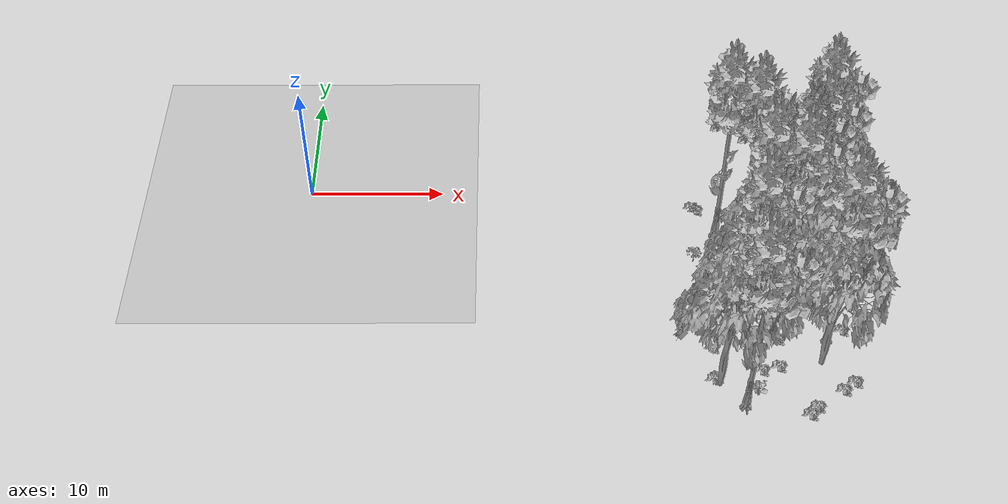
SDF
<sdf version="1.7">
 <world name="default">
  <model name="ground_plane">
   <static>1</static>
   <link name="link">
    <collision name="collision">
     <pose>-50 0 0 0 -0 0</pose>
     <geometry><plane><normal>0 0 1</normal><size>80 80</size></plane></geometry>
     <surface><contact><ode><min_depth>0.01</min_depth><max_vel>0</max_vel></ode></contact></surface>
    </collision>
    <visual name="grass">
     <cast_shadows>0</cast_shadows>
     <geometry>
      <mesh>
       <scale>0.46714285714285714 0.46714285714285714 0.1</scale>
       <uri>file://grass_plane/meshes/grass_plane.dae</uri>
      </mesh>
     </geometry>
    </visual>
   </link>
  </model>
  <model name="Tree 28">
   <static>1</static>
   <pose>37.20781900729531 -3.2603226209022864 0 1.57079 -0 0</pose>
   <link name="link">
    <collision name="collision">
     <geometry><mesh><scale>3.5 5 3.5</scale><uri>model://tree_9/meshes/tree_9.obj</uri></mesh></geometry>
    </collision>
    <visual name="visual">
     <geometry><mesh><scale>3.5 5 3.5</scale><uri>model://tree_9/meshes/tree_9.obj</uri></mesh></geometry>
    </visual>
   </link>
  </model>
  <model name="Tree 43">
   <static>1</static>
   <pose>31.54406559935761 -12.864629850002025 0 1.57079 -0 0</pose>
   <link name="link">
    <collision name="collision">
     <geometry><mesh><scale>3.5 5 3.5</scale><uri>model://tree_2/meshes/tree_2.obj</uri></mesh></geometry>
    </collision>
    <visual name="visual">
     <geometry><mesh><scale>3.5 5 3.5</scale><uri>model://tree_2/meshes/tree_2.obj</uri></mesh></geometry>
    </visual>
   </link>
  </model>
  <model name="Tree 53">
   <static>1</static>
   <pose>29.17566312932324 -17.875116736966092 0 1.57079 -0 0</pose>
   <link name="link">
    <collision name="collision">
     <geometry><mesh><scale>3.5 5 3.5</scale><uri>model://tree_2/meshes/tree_2.obj</uri></mesh></geometry>
    </collision>
    <visual name="visual">
     <geometry><mesh><scale>3.5 5 3.5</scale><uri>model://tree_2/meshes/tree_2.obj</uri></mesh></geometry>
    </visual>
   </link>
  </model>
  <model name="Tree 108">
   <static>1</static>
   <pose>36.24716246931898 -6.479807884929507 0 1.57079 -0 0</pose>
   <link name="link">
    <collision name="collision">
     <geometry><mesh><scale>3.5 5 3.5</scale><uri>model://tree_9/meshes/tree_9.obj</uri></mesh></geometry>
    </collision>
    <visual name="visual">
     <geometry><mesh><scale>3.5 5 3.5</scale><uri>model://tree_9/meshes/tree_9.obj</uri></mesh></geometry>
    </visual>
   </link>
  </model>
  <model name="Tree 156">
   <static>1</static>
   <pose>38.16290114848405 -9.777856768389803 0 1.57079 -0 0</pose>
   <link name="link">
    <collision name="collision">
     <geometry><mesh><scale>3.5 5 3.5</scale><uri>model://tree_2/meshes/tree_2.obj</uri></mesh></geometry>
    </collision>
    <visual name="visual">
     <geometry><mesh><scale>3.5 5 3.5</scale><uri>model://tree_2/meshes/tree_2.obj</uri></mesh></geometry>
    </visual>
   </link>
  </model>
  <model name="Tree 161">
   <static>1</static>
   <pose>36.83175222464068 -4.161062454327322 0 1.57079 -0 0</pose>
   <link name="link">
    <collision name="collision">
     <geometry><mesh><scale>3.5 5 3.5</scale><uri>model://tree_2/meshes/tree_2.obj</uri></mesh></geometry>
    </collision>
    <visual name="visual">
     <geometry><mesh><scale>3.5 5 3.5</scale><uri>model://tree_2/meshes/tree_2.obj</uri></mesh></geometry>
    </visual>
   </link>
  </model>
  <model name="Tree 177">
   <static>1</static>
   <pose>30.83587751498912 -19.513724781188444 0 1.57079 -0 0</pose>
   <link name="link">
    <collision name="collision">
     <geometry><mesh><scale>3.5 5 3.5</scale><uri>model://tree_9/meshes/tree_9.obj</uri></mesh></geometry>
    </collision>
    <visual name="visual">
     <geometry><mesh><scale>3.5 5 3.5</scale><uri>model://tree_9/meshes/tree_9.obj</uri></mesh></geometry>
    </visual>
   </link>
  </model>
  <model name="Tree 214">
   <static>1</static>
   <pose>35.07668439820017 -7.827384569034166 0 1.57079 -0 0</pose>
   <link name="link">
    <collision name="collision">
     <geometry><mesh><scale>3.5 5 3.5</scale><uri>model://tree_9/meshes/tree_9.obj</uri></mesh></geometry>
    </collision>
    <visual name="visual">
     <geometry><mesh><scale>3.5 5 3.5</scale><uri>model://tree_9/meshes/tree_9.obj</uri></mesh></geometry>
    </visual>
   </link>
  </model>
  <model name="Tree 221">
   <static>1</static>
   <pose>32.46962147828559 -9.370624339465596 0 1.57079 -0 0</pose>
   <link name="link">
    <collision name="collision">
     <geometry><mesh><scale>3.5 5 3.5</scale><uri>model://tree_9/meshes/tree_9.obj</uri></mesh></geometry>
    </collision>
    <visual name="visual">
     <geometry><mesh><scale>3.5 5 3.5</scale><uri>model://tree_9/meshes/tree_9.obj</uri></mesh></geometry>
    </visual>
   </link>
  </model>
  <model name="Tree 266">
   <static>1</static>
   <pose>32.06286387311586 -5.08510798920458 0 1.57079 -0 0</pose>
   <link name="link">
    <collision name="collision">
     <geometry><mesh><scale>3.5 5 3.5</scale><uri>model://tree_9/meshes/tree_9.obj</uri></mesh></geometry>
    </collision>
    <visual name="visual">
     <geometry><mesh><scale>3.5 5 3.5</scale><uri>model://tree_9/meshes/tree_9.obj</uri></mesh></geometry>
    </visual>
   </link>
  </model>
  <model name="Tree 377">
   <static>1</static>
   <pose>31.89514629894518 -15.52339123610598 0 1.57079 -0 0</pose>
   <link name="link">
    <collision name="collision">
     <geometry><mesh><scale>3.5 5 3.5</scale><uri>model://tree_2/meshes/tree_2.obj</uri></mesh></geometry>
    </collision>
    <visual name="visual">
     <geometry><mesh><scale>3.5 5 3.5</scale><uri>model://tree_2/meshes/tree_2.obj</uri></mesh></geometry>
    </visual>
   </link>
  </model>
  <model name="Tree 404">
   <static>1</static>
   <pose>36.27686491413884 -16.13471344217143 0 1.57079 -0 0</pose>
   <link name="link">
    <collision name="collision">
     <geometry><mesh><scale>3.5 5 3.5</scale><uri>model://tree_2/meshes/tree_2.obj</uri></mesh></geometry>
    </collision>
    <visual name="visual">
     <geometry><mesh><scale>3.5 5 3.5</scale><uri>model://tree_2/meshes/tree_2.obj</uri></mesh></geometry>
    </visual>
   </link>
  </model>
  <model name="Tree 412">
   <static>1</static>
   <pose>34.5011912124978 -10.21957243598284 0 1.57079 -0 0</pose>
   <link name="link">
    <collision name="collision">
     <geometry><mesh><scale>3.5 5 3.5</scale><uri>model://tree_9/meshes/tree_9.obj</uri></mesh></geometry>
    </collision>
    <visual name="visual">
     <geometry><mesh><scale>3.5 5 3.5</scale><uri>model://tree_9/meshes/tree_9.obj</uri></mesh></geometry>
    </visual>
   </link>
  </model>
  <model name="Tree 483">
   <static>1</static>
   <pose>34.95944101497105 -8.060247977645439 0 1.57079 -0 0</pose>
   <link name="link">
    <collision name="collision">
     <geometry><mesh><scale>3.5 5 3.5</scale><uri>model://tree_9/meshes/tree_9.obj</uri></mesh></geometry>
    </collision>
    <visual name="visual">
     <geometry><mesh><scale>3.5 5 3.5</scale><uri>model://tree_9/meshes/tree_9.obj</uri></mesh></geometry>
    </visual>
   </link>
  </model>
  <model name="Tree 535">
   <static>1</static>
   <pose>31.39605635225162 -14.01387859134897 0 1.57079 -0 0</pose>
   <link name="link">
    <collision name="collision">
     <geometry><mesh><scale>3.5 5 3.5</scale><uri>model://tree_9/meshes/tree_9.obj</uri></mesh></geometry>
    </collision>
    <visual name="visual">
     <geometry><mesh><scale>3.5 5 3.5</scale><uri>model://tree_9/meshes/tree_9.obj</uri></mesh></geometry>
    </visual>
   </link>
  </model>
  <model name="Tree 552">
   <static>1</static>
   <pose>37.11375133844457 -13.90108821370194 0 1.57079 -0 0</pose>
   <link name="link">
    <collision name="collision">
     <geometry><mesh><scale>3.5 5 3.5</scale><uri>model://tree_9/meshes/tree_9.obj</uri></mesh></geometry>
    </collision>
    <visual name="visual">
     <geometry><mesh><scale>3.5 5 3.5</scale><uri>model://tree_9/meshes/tree_9.obj</uri></mesh></geometry>
    </visual>
   </link>
  </model>
  <model name="Tree 577">
   <static>1</static>
   <pose>30.30912611873339 -3.8961054746387447 0 1.57079 -0 0</pose>
   <link name="link">
    <collision name="collision">
     <geometry><mesh><scale>3.5 5 3.5</scale><uri>model://tree_9/meshes/tree_9.obj</uri></mesh></geometry>
    </collision>
    <visual name="visual">
     <geometry><mesh><scale>3.5 5 3.5</scale><uri>model://tree_9/meshes/tree_9.obj</uri></mesh></geometry>
    </visual>
   </link>
  </model>
  <model name="Bush 16">
   <static>1</static>
   <pose>38.41296394535043 -17.816303980164257 0 1.57079 -0 0</pose>
   <link name="link">
    <collision name="collision">
     <geometry><mesh><scale>2 2 2</scale><uri>model://bush_2/meshes/bush_2.obj</uri></mesh></geometry>
     <surface><contact><collide_without_contact>false</collide_without_contact></contact></surface>
    </collision>
    <visual name="visual">
     <geometry><mesh><scale>2 2 2</scale><uri>model://bush_2/meshes/bush_2.obj</uri></mesh></geometry>
    </visual>
   </link>
  </model>
  <model name="Bush 61">
   <static>1</static>
   <pose>34.06570330100767 -8.354524775327327 0 1.57079 -0 0</pose>
   <link name="link">
    <collision name="collision">
     <geometry><mesh><scale>2 2 2</scale><uri>model://bush_2/meshes/bush_2.obj</uri></mesh></geometry>
     <surface><contact><collide_without_contact>false</collide_without_contact></contact></surface>
    </collision>
    <visual name="visual">
     <geometry><mesh><scale>2 2 2</scale><uri>model://bush_2/meshes/bush_2.obj</uri></mesh></geometry>
    </visual>
   </link>
  </model>
  <model name="Bush 103">
   <static>1</static>
   <pose>38.61188648727199 -8.475994144768883 0 1.57079 -0 0</pose>
   <link name="link">
    <collision name="collision">
     <geometry><mesh><scale>2 2 2</scale><uri>model://bush_2/meshes/bush_2.obj</uri></mesh></geometry>
     <surface><contact><collide_without_contact>false</collide_without_contact></contact></surface>
    </collision>
    <visual name="visual">
     <geometry><mesh><scale>2 2 2</scale><uri>model://bush_2/meshes/bush_2.obj</uri></mesh></geometry>
    </visual>
   </link>
  </model>
  <model name="Bush 151">
   <static>1</static>
   <pose>32.522378706385794 -6.434655205558329 0 1.57079 -0 0</pose>
   <link name="link">
    <collision name="collision">
     <geometry><mesh><scale>2 2 2</scale><uri>model://bush_1/meshes/bush_1.obj</uri></mesh></geometry>
     <surface><contact><collide_without_contact>false</collide_without_contact></contact></surface>
    </collision>
    <visual name="visual">
     <geometry><mesh><scale>2 2 2</scale><uri>model://bush_1/meshes/bush_1.obj</uri></mesh></geometry>
    </visual>
   </link>
  </model>
  <model name="Bush 159">
   <static>1</static>
   <pose>37.506549957906 -5.9010498722541485 0 1.57079 -0 0</pose>
   <link name="link">
    <collision name="collision">
     <geometry><mesh><scale>2 2 2</scale><uri>model://bush_2/meshes/bush_2.obj</uri></mesh></geometry>
     <surface><contact><collide_without_contact>false</collide_without_contact></contact></surface>
    </collision>
    <visual name="visual">
     <geometry><mesh><scale>2 2 2</scale><uri>model://bush_2/meshes/bush_2.obj</uri></mesh></geometry>
    </visual>
   </link>
  </model>
  <model name="Bush 163">
   <static>1</static>
   <pose>34.098184986885045 -11.876348482920225 0 1.57079 -0 0</pose>
   <link name="link">
    <collision name="collision">
     <geometry><mesh><scale>2 2 2</scale><uri>model://bush_2/meshes/bush_2.obj</uri></mesh></geometry>
     <surface><contact><collide_without_contact>false</collide_without_contact></contact></surface>
    </collision>
    <visual name="visual">
     <geometry><mesh><scale>2 2 2</scale><uri>model://bush_2/meshes/bush_2.obj</uri></mesh></geometry>
    </visual>
   </link>
  </model>
  <model name="Bush 176">
   <static>1</static>
   <pose>30.904796253445284 -2.9967966963223702 0 1.57079 -0 0</pose>
   <link name="link">
    <collision name="collision">
     <geometry><mesh><scale>2 2 2</scale><uri>model://bush_5/meshes/bush_5.obj</uri></mesh></geometry>
     <surface><contact><collide_without_contact>false</collide_without_contact></contact></surface>
    </collision>
    <visual name="visual">
     <geometry><mesh><scale>2 2 2</scale><uri>model://bush_5/meshes/bush_5.obj</uri></mesh></geometry>
    </visual>
   </link>
  </model>
  <model name="Bush 183">
   <static>1</static>
   <pose>31.948171573289173 -4.260674616003868 0 1.57079 -0 0</pose>
   <link name="link">
    <collision name="collision">
     <geometry><mesh><scale>2 2 2</scale><uri>model://bush_2/meshes/bush_2.obj</uri></mesh></geometry>
     <surface><contact><collide_without_contact>false</collide_without_contact></contact></surface>
    </collision>
    <visual name="visual">
     <geometry><mesh><scale>2 2 2</scale><uri>model://bush_2/meshes/bush_2.obj</uri></mesh></geometry>
    </visual>
   </link>
  </model>
  <model name="Bush 184">
   <static>1</static>
   <pose>31.700330424855522 -18.814867498233376 0 1.57079 -0 0</pose>
   <link name="link">
    <collision name="collision">
     <geometry><mesh><scale>2 2 2</scale><uri>model://bush_0/meshes/bush_0.obj</uri></mesh></geometry>
     <surface><contact><collide_without_contact>false</collide_without_contact></contact></surface>
    </collision>
    <visual name="visual">
     <geometry><mesh><scale>2 2 2</scale><uri>model://bush_0/meshes/bush_0.obj</uri></mesh></geometry>
    </visual>
   </link>
  </model>
  <model name="Bush 231">
   <static>1</static>
   <pose>28.437231542338324 -6.84191562480224 0 1.57079 -0 0</pose>
   <link name="link">
    <collision name="collision">
     <geometry><mesh><scale>2 2 2</scale><uri>model://bush_5/meshes/bush_5.obj</uri></mesh></geometry>
     <surface><contact><collide_without_contact>false</collide_without_contact></contact></surface>
    </collision>
    <visual name="visual">
     <geometry><mesh><scale>2 2 2</scale><uri>model://bush_5/meshes/bush_5.obj</uri></mesh></geometry>
    </visual>
   </link>
  </model>
  <model name="Bush 256">
   <static>1</static>
   <pose>29.08152706664366 -17.3917519995552 0 1.57079 -0 0</pose>
   <link name="link">
    <collision name="collision">
     <geometry><mesh><scale>2 2 2</scale><uri>model://bush_2/meshes/bush_2.obj</uri></mesh></geometry>
     <surface><contact><collide_without_contact>false</collide_without_contact></contact></surface>
    </collision>
    <visual name="visual">
     <geometry><mesh><scale>2 2 2</scale><uri>model://bush_2/meshes/bush_2.obj</uri></mesh></geometry>
    </visual>
   </link>
  </model>
  <model name="Bush 275">
   <static>1</static>
   <pose>36.809779993617255 -12.226224199517155 0 1.57079 -0 0</pose>
   <link name="link">
    <collision name="collision">
     <geometry><mesh><scale>2 2 2</scale><uri>model://bush_4/meshes/bush_4.obj</uri></mesh></geometry>
     <surface><contact><collide_without_contact>false</collide_without_contact></contact></surface>
    </collision>
    <visual name="visual">
     <geometry><mesh><scale>2 2 2</scale><uri>model://bush_4/meshes/bush_4.obj</uri></mesh></geometry>
    </visual>
   </link>
  </model>
  <model name="Bush 288">
   <static>1</static>
   <pose>33.42834000388105 -16.49718881183162 0 1.57079 -0 0</pose>
   <link name="link">
    <collision name="collision">
     <geometry><mesh><scale>2 2 2</scale><uri>model://bush_2/meshes/bush_2.obj</uri></mesh></geometry>
     <surface><contact><collide_without_contact>false</collide_without_contact></contact></surface>
    </collision>
    <visual name="visual">
     <geometry><mesh><scale>2 2 2</scale><uri>model://bush_2/meshes/bush_2.obj</uri></mesh></geometry>
    </visual>
   </link>
  </model>
  <model name="Bush 306">
   <static>1</static>
   <pose>32.212048872772584 -16.804245161502358 0 1.57079 -0 0</pose>
   <link name="link">
    <collision name="collision">
     <geometry><mesh><scale>2 2 2</scale><uri>model://bush_2/meshes/bush_2.obj</uri></mesh></geometry>
     <surface><contact><collide_without_contact>false</collide_without_contact></contact></surface>
    </collision>
    <visual name="visual">
     <geometry><mesh><scale>2 2 2</scale><uri>model://bush_2/meshes/bush_2.obj</uri></mesh></geometry>
    </visual>
   </link>
  </model>
  <model name="Bush 308">
   <static>1</static>
   <pose>28.89073767009846 -17.572722266616676 0 1.57079 -0 0</pose>
   <link name="link">
    <collision name="collision">
     <geometry><mesh><scale>2 2 2</scale><uri>model://bush_2/meshes/bush_2.obj</uri></mesh></geometry>
     <surface><contact><collide_without_contact>false</collide_without_contact></contact></surface>
    </collision>
    <visual name="visual">
     <geometry><mesh><scale>2 2 2</scale><uri>model://bush_2/meshes/bush_2.obj</uri></mesh></geometry>
    </visual>
   </link>
  </model>
  <model name="Bush 316">
   <static>1</static>
   <pose>32.173364111780515 -10.452075029612509 0 1.57079 -0 0</pose>
   <link name="link">
    <collision name="collision">
     <geometry><mesh><scale>2 2 2</scale><uri>model://bush_2/meshes/bush_2.obj</uri></mesh></geometry>
     <surface><contact><collide_without_contact>false</collide_without_contact></contact></surface>
    </collision>
    <visual name="visual">
     <geometry><mesh><scale>2 2 2</scale><uri>model://bush_2/meshes/bush_2.obj</uri></mesh></geometry>
    </visual>
   </link>
  </model>
  <model name="Bush 325">
   <static>1</static>
   <pose>38.19436326131809 -13.342091101914662 0 1.57079 -0 0</pose>
   <link name="link">
    <collision name="collision">
     <geometry><mesh><scale>2 2 2</scale><uri>model://bush_2/meshes/bush_2.obj</uri></mesh></geometry>
     <surface><contact><collide_without_contact>false</collide_without_contact></contact></surface>
    </collision>
    <visual name="visual">
     <geometry><mesh><scale>2 2 2</scale><uri>model://bush_2/meshes/bush_2.obj</uri></mesh></geometry>
    </visual>
   </link>
  </model>
  <model name="Bush 359">
   <static>1</static>
   <pose>37.55013885933657 -18.479250624871753 0 1.57079 -0 0</pose>
   <link name="link">
    <collision name="collision">
     <geometry><mesh><scale>2 2 2</scale><uri>model://bush_2/meshes/bush_2.obj</uri></mesh></geometry>
     <surface><contact><collide_without_contact>false</collide_without_contact></contact></surface>
    </collision>
    <visual name="visual">
     <geometry><mesh><scale>2 2 2</scale><uri>model://bush_2/meshes/bush_2.obj</uri></mesh></geometry>
    </visual>
   </link>
  </model>
  <model name="Bush 369">
   <static>1</static>
   <pose>35.57344270342891 -19.85106487864101 0 1.57079 -0 0</pose>
   <link name="link">
    <collision name="collision">
     <geometry><mesh><scale>2 2 2</scale><uri>model://bush_2/meshes/bush_2.obj</uri></mesh></geometry>
     <surface><contact><collide_without_contact>false</collide_without_contact></contact></surface>
    </collision>
    <visual name="visual">
     <geometry><mesh><scale>2 2 2</scale><uri>model://bush_2/meshes/bush_2.obj</uri></mesh></geometry>
    </visual>
   </link>
  </model>
  <model name="Bush 427">
   <static>1</static>
   <pose>37.96054957426526 -7.878973029404335 0 1.57079 -0 0</pose>
   <link name="link">
    <collision name="collision">
     <geometry><mesh><scale>2 2 2</scale><uri>model://bush_2/meshes/bush_2.obj</uri></mesh></geometry>
     <surface><contact><collide_without_contact>false</collide_without_contact></contact></surface>
    </collision>
    <visual name="visual">
     <geometry><mesh><scale>2 2 2</scale><uri>model://bush_2/meshes/bush_2.obj</uri></mesh></geometry>
    </visual>
   </link>
  </model>
  <model name="Bush 481">
   <static>1</static>
   <pose>28.850527166094054 -10.2276131480862 0 1.57079 -0 0</pose>
   <link name="link">
    <collision name="collision">
     <geometry><mesh><scale>2 2 2</scale><uri>model://bush_2/meshes/bush_2.obj</uri></mesh></geometry>
     <surface><contact><collide_without_contact>false</collide_without_contact></contact></surface>
    </collision>
    <visual name="visual">
     <geometry><mesh><scale>2 2 2</scale><uri>model://bush_2/meshes/bush_2.obj</uri></mesh></geometry>
    </visual>
   </link>
  </model>
  <model name="Bush 497">
   <static>1</static>
   <pose>35.01318930931329 -20.464851097204246 0 1.57079 -0 0</pose>
   <link name="link">
    <collision name="collision">
     <geometry><mesh><scale>2 2 2</scale><uri>model://bush_2/meshes/bush_2.obj</uri></mesh></geometry>
     <surface><contact><collide_without_contact>false</collide_without_contact></contact></surface>
    </collision>
    <visual name="visual">
     <geometry><mesh><scale>2 2 2</scale><uri>model://bush_2/meshes/bush_2.obj</uri></mesh></geometry>
    </visual>
   </link>
  </model>
  <model name="Bush 512">
   <static>1</static>
   <pose>29.08200988413141 -1.7865415375856415 0 1.57079 -0 0</pose>
   <link name="link">
    <collision name="collision">
     <geometry><mesh><scale>2 2 2</scale><uri>model://bush_2/meshes/bush_2.obj</uri></mesh></geometry>
     <surface><contact><collide_without_contact>false</collide_without_contact></contact></surface>
    </collision>
    <visual name="visual">
     <geometry><mesh><scale>2 2 2</scale><uri>model://bush_2/meshes/bush_2.obj</uri></mesh></geometry>
    </visual>
   </link>
  </model>
  <model name="Bush 531">
   <static>1</static>
   <pose>37.67946589727623 -1.6528376553424522 0 1.57079 -0 0</pose>
   <link name="link">
    <collision name="collision">
     <geometry><mesh><scale>2 2 2</scale><uri>model://bush_4/meshes/bush_4.obj</uri></mesh></geometry>
     <surface><contact><collide_without_contact>false</collide_without_contact></contact></surface>
    </collision>
    <visual name="visual">
     <geometry><mesh><scale>2 2 2</scale><uri>model://bush_4/meshes/bush_4.obj</uri></mesh></geometry>
    </visual>
   </link>
  </model>
  <model name="Bush 559">
   <static>1</static>
   <pose>29.02437974577626 -14.857376509487814 0 1.57079 -0 0</pose>
   <link name="link">
    <collision name="collision">
     <geometry><mesh><scale>2 2 2</scale><uri>model://bush_2/meshes/bush_2.obj</uri></mesh></geometry>
     <surface><contact><collide_without_contact>false</collide_without_contact></contact></surface>
    </collision>
    <visual name="visual">
     <geometry><mesh><scale>2 2 2</scale><uri>model://bush_2/meshes/bush_2.obj</uri></mesh></geometry>
    </visual>
   </link>
  </model>
  <model name="Bush 570">
   <static>1</static>
   <pose>28.759527851249587 -1.4991544896370357 0 1.57079 -0 0</pose>
   <link name="link">
    <collision name="collision">
     <geometry><mesh><scale>2 2 2</scale><uri>model://bush_2/meshes/bush_2.obj</uri></mesh></geometry>
     <surface><contact><collide_without_contact>false</collide_without_contact></contact></surface>
    </collision>
    <visual name="visual">
     <geometry><mesh><scale>2 2 2</scale><uri>model://bush_2/meshes/bush_2.obj</uri></mesh></geometry>
    </visual>
   </link>
  </model>
  <model name="Bush 582">
   <static>1</static>
   <pose>31.57013314092069 -8.49084967105691 0 1.57079 -0 0</pose>
   <link name="link">
    <collision name="collision">
     <geometry><mesh><scale>2 2 2</scale><uri>model://bush_2/meshes/bush_2.obj</uri></mesh></geometry>
     <surface><contact><collide_without_contact>false</collide_without_contact></contact></surface>
    </collision>
    <visual name="visual">
     <geometry><mesh><scale>2 2 2</scale><uri>model://bush_2/meshes/bush_2.obj</uri></mesh></geometry>
    </visual>
   </link>
  </model>
  <model name="Bush 637">
   <static>1</static>
   <pose>33.62921029411264 -14.12971920339352 0 1.57079 -0 0</pose>
   <link name="link">
    <collision name="collision">
     <geometry><mesh><scale>2 2 2</scale><uri>model://bush_2/meshes/bush_2.obj</uri></mesh></geometry>
     <surface><contact><collide_without_contact>false</collide_without_contact></contact></surface>
    </collision>
    <visual name="visual">
     <geometry><mesh><scale>2 2 2</scale><uri>model://bush_2/meshes/bush_2.obj</uri></mesh></geometry>
    </visual>
   </link>
  </model>
 </world>
</sdf>
